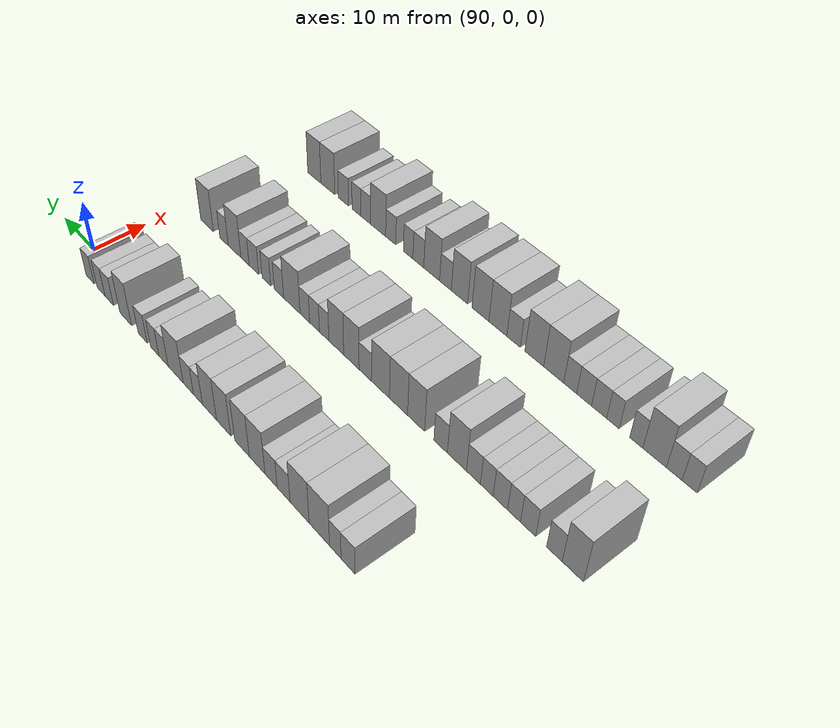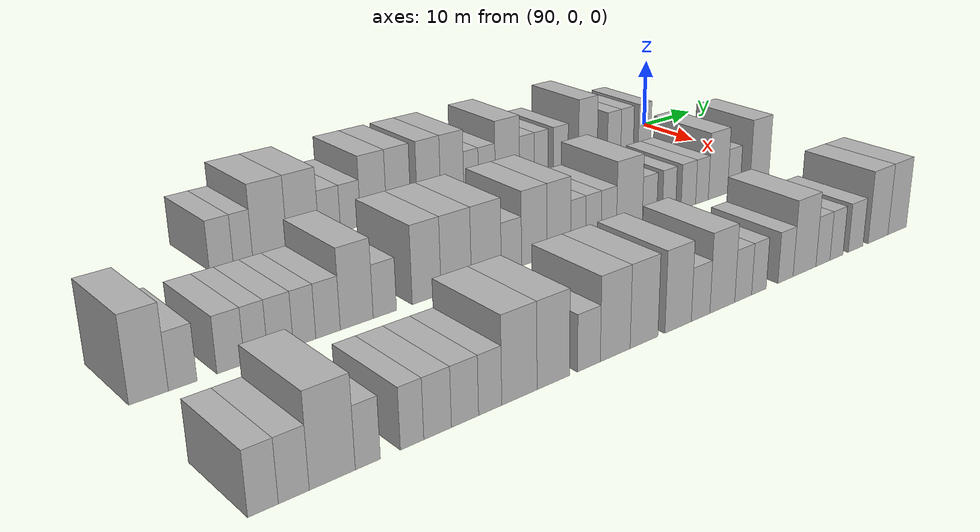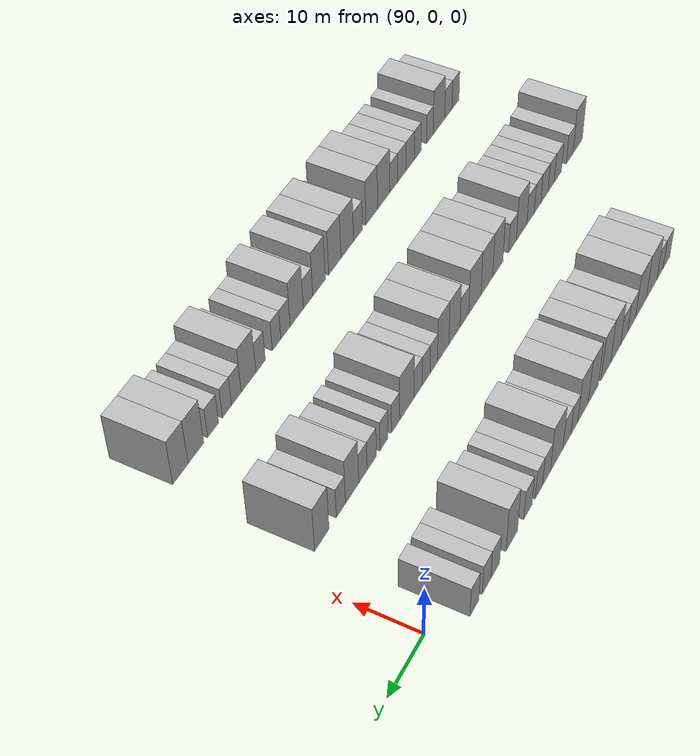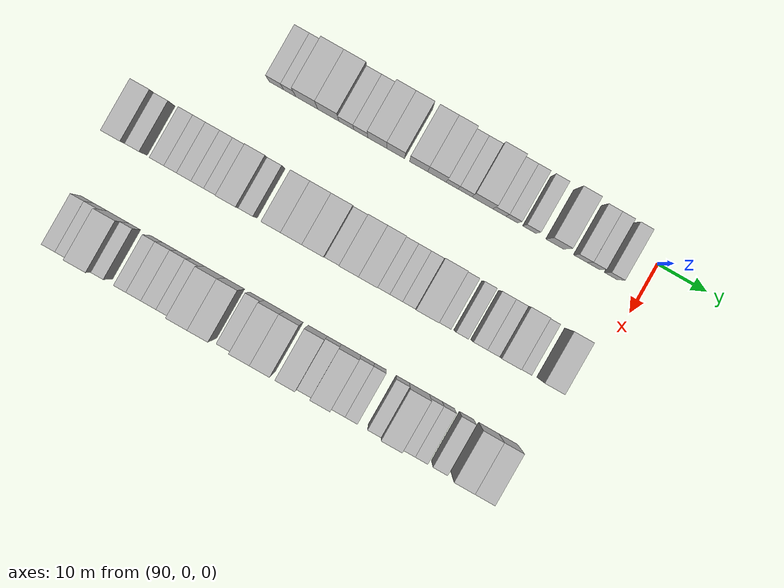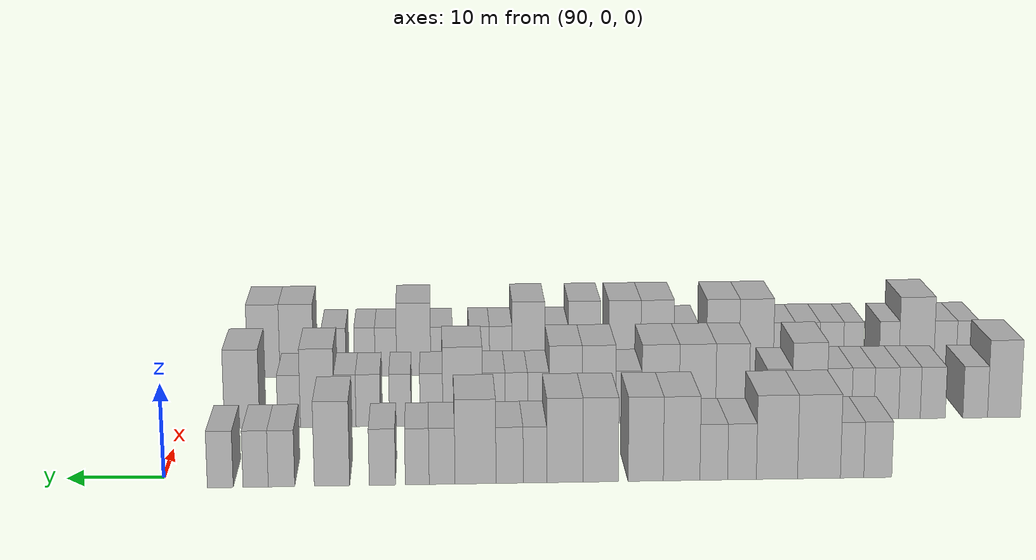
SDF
<sdf version="1.6">
 <world name="default">
  <model name="building_635">
   <static>1</static>
   <pose>91.0000 -74.0709 0 0.000000 0.000000 0.000000</pose>
   <link name="link">
    <pose>0 0 3.00 0 0 0</pose>
    <collision name="collision"><geometry><box><size>10.0000 2.9344 6.0000</size></box></geometry></collision>
    <visual name="visual">
     <cast_shadows>0</cast_shadows>
     <geometry><box><size>10.0000 2.9344 6.0000</size></box></geometry>
     <material>
      <script>
       <uri>model://HANNAS_wall/materials/scripts</uri>
       <uri>model://HANNAS_wall/materials/textures</uri>
       <name>vrc/HANNAS_wall</name>
      </script>
     </material>
    </visual>
   </link>
  </model>
  <model name="building_636">
   <static>1</static>
   <pose>91.0000 -71.3805 0 0.000000 0.000000 0.000000</pose>
   <link name="link">
    <pose>0 0 3.00 0 0 0</pose>
    <collision name="collision"><geometry><box><size>10.0000 2.4462 6.0000</size></box></geometry></collision>
    <visual name="visual">
     <cast_shadows>0</cast_shadows>
     <geometry><box><size>10.0000 2.4462 6.0000</size></box></geometry>
     <material>
      <script>
       <uri>model://HANNAS_wall/materials/scripts</uri>
       <uri>model://HANNAS_wall/materials/textures</uri>
       <name>vrc/HANNAS_wall</name>
      </script>
     </material>
    </visual>
   </link>
  </model>
  <model name="building_637">
   <static>1</static>
   <pose>91.0000 -67.9152 0 0.000000 0.000000 0.000000</pose>
   <link name="link">
    <pose>0 0 4.50 0 0 0</pose>
    <collision name="collision"><geometry><box><size>10.0000 4.4844 9.0000</size></box></geometry></collision>
    <visual name="visual">
     <cast_shadows>0</cast_shadows>
     <geometry><box><size>10.0000 4.4844 9.0000</size></box></geometry>
     <material>
      <script>
       <uri>model://HANNAS_wall/materials/scripts</uri>
       <uri>model://HANNAS_wall/materials/textures</uri>
       <name>vrc/HANNAS_wall</name>
      </script>
     </material>
    </visual>
   </link>
  </model>
  <model name="building_638">
   <static>1</static>
   <pose>91.0000 -63.5271 0 0.000000 0.000000 0.000000</pose>
   <link name="link">
    <pose>0 0 4.50 0 0 0</pose>
    <collision name="collision"><geometry><box><size>10.0000 4.2916 9.0000</size></box></geometry></collision>
    <visual name="visual">
     <cast_shadows>0</cast_shadows>
     <geometry><box><size>10.0000 4.2916 9.0000</size></box></geometry>
     <material>
      <script>
       <uri>model://HANNAS_wall/materials/scripts</uri>
       <uri>model://HANNAS_wall/materials/textures</uri>
       <name>vrc/HANNAS_wall</name>
      </script>
     </material>
    </visual>
   </link>
  </model>
  <model name="building_639">
   <static>1</static>
   <pose>91.0000 -59.8822 0 0.000000 0.000000 0.000000</pose>
   <link name="link">
    <pose>0 0 3.00 0 0 0</pose>
    <collision name="collision"><geometry><box><size>10.0000 2.9983 6.0000</size></box></geometry></collision>
    <visual name="visual">
     <cast_shadows>0</cast_shadows>
     <geometry><box><size>10.0000 2.9983 6.0000</size></box></geometry>
     <material>
      <script>
       <uri>model://HANNAS_wall/materials/scripts</uri>
       <uri>model://HANNAS_wall/materials/textures</uri>
       <name>vrc/HANNAS_wall</name>
      </script>
     </material>
    </visual>
   </link>
  </model>
  <model name="building_640">
   <static>1</static>
   <pose>91.0000 -56.9456 0 0.000000 0.000000 0.000000</pose>
   <link name="link">
    <pose>0 0 3.00 0 0 0</pose>
    <collision name="collision"><geometry><box><size>10.0000 2.8748 6.0000</size></box></geometry></collision>
    <visual name="visual">
     <cast_shadows>0</cast_shadows>
     <geometry><box><size>10.0000 2.8748 6.0000</size></box></geometry>
     <material>
      <script>
       <uri>model://HANNAS_wall/materials/scripts</uri>
       <uri>model://HANNAS_wall/materials/textures</uri>
       <name>vrc/HANNAS_wall</name>
      </script>
     </material>
    </visual>
   </link>
  </model>
  <model name="building_641">
   <static>1</static>
   <pose>91.0000 -53.6068 0 0.000000 0.000000 0.000000</pose>
   <link name="link">
    <pose>0 0 4.50 0 0 0</pose>
    <collision name="collision"><geometry><box><size>10.0000 3.8029 9.0000</size></box></geometry></collision>
    <visual name="visual">
     <cast_shadows>0</cast_shadows>
     <geometry><box><size>10.0000 3.8029 9.0000</size></box></geometry>
     <material>
      <script>
       <uri>model://HANNAS_wall/materials/scripts</uri>
       <uri>model://HANNAS_wall/materials/textures</uri>
       <name>vrc/HANNAS_wall</name>
      </script>
     </material>
    </visual>
   </link>
  </model>
  <model name="building_642">
   <static>1</static>
   <pose>91.0000 -49.8821 0 0.000000 0.000000 0.000000</pose>
   <link name="link">
    <pose>0 0 4.50 0 0 0</pose>
    <collision name="collision"><geometry><box><size>10.0000 3.6464 9.0000</size></box></geometry></collision>
    <visual name="visual">
     <cast_shadows>0</cast_shadows>
     <geometry><box><size>10.0000 3.6464 9.0000</size></box></geometry>
     <material>
      <script>
       <uri>model://HANNAS_wall/materials/scripts</uri>
       <uri>model://HANNAS_wall/materials/textures</uri>
       <name>vrc/HANNAS_wall</name>
      </script>
     </material>
    </visual>
   </link>
  </model>
  <model name="building_643">
   <static>1</static>
   <pose>91.0000 -45.2205 0 0.000000 0.000000 0.000000</pose>
   <link name="link">
    <pose>0 0 4.50 0 0 0</pose>
    <collision name="collision"><geometry><box><size>10.0000 3.6768 9.0000</size></box></geometry></collision>
    <visual name="visual">
     <cast_shadows>0</cast_shadows>
     <geometry><box><size>10.0000 3.6768 9.0000</size></box></geometry>
     <material>
      <script>
       <uri>model://HANNAS_wall/materials/scripts</uri>
       <uri>model://HANNAS_wall/materials/textures</uri>
       <name>vrc/HANNAS_wall</name>
      </script>
     </material>
    </visual>
   </link>
  </model>
  <model name="building_644">
   <static>1</static>
   <pose>91.0000 -41.5145 0 0.000000 0.000000 0.000000</pose>
   <link name="link">
    <pose>0 0 4.50 0 0 0</pose>
    <collision name="collision"><geometry><box><size>10.0000 3.7351 9.0000</size></box></geometry></collision>
    <visual name="visual">
     <cast_shadows>0</cast_shadows>
     <geometry><box><size>10.0000 3.7351 9.0000</size></box></geometry>
     <material>
      <script>
       <uri>model://HANNAS_wall/materials/scripts</uri>
       <uri>model://HANNAS_wall/materials/textures</uri>
       <name>vrc/HANNAS_wall</name>
      </script>
     </material>
    </visual>
   </link>
  </model>
  <model name="building_645">
   <static>1</static>
   <pose>91.0000 -38.4272 0 0.000000 0.000000 0.000000</pose>
   <link name="link">
    <pose>0 0 3.00 0 0 0</pose>
    <collision name="collision"><geometry><box><size>10.0000 2.4395 6.0000</size></box></geometry></collision>
    <visual name="visual">
     <cast_shadows>0</cast_shadows>
     <geometry><box><size>10.0000 2.4395 6.0000</size></box></geometry>
     <material>
      <script>
       <uri>model://HANNAS_wall/materials/scripts</uri>
       <uri>model://HANNAS_wall/materials/textures</uri>
       <name>vrc/HANNAS_wall</name>
      </script>
     </material>
    </visual>
   </link>
  </model>
  <model name="building_646">
   <static>1</static>
   <pose>91.0000 -35.8054 0 0.000000 0.000000 0.000000</pose>
   <link name="link">
    <pose>0 0 3.00 0 0 0</pose>
    <collision name="collision"><geometry><box><size>10.0000 2.8041 6.0000</size></box></geometry></collision>
    <visual name="visual">
     <cast_shadows>0</cast_shadows>
     <geometry><box><size>10.0000 2.8041 6.0000</size></box></geometry>
     <material>
      <script>
       <uri>model://HANNAS_wall/materials/scripts</uri>
       <uri>model://HANNAS_wall/materials/textures</uri>
       <name>vrc/HANNAS_wall</name>
      </script>
     </material>
    </visual>
   </link>
  </model>
  <model name="building_647">
   <static>1</static>
   <pose>91.0000 -32.2927 0 0.000000 0.000000 0.000000</pose>
   <link name="link">
    <pose>0 0 4.50 0 0 0</pose>
    <collision name="collision"><geometry><box><size>10.0000 4.2214 9.0000</size></box></geometry></collision>
    <visual name="visual">
     <cast_shadows>0</cast_shadows>
     <geometry><box><size>10.0000 4.2214 9.0000</size></box></geometry>
     <material>
      <script>
       <uri>model://HANNAS_wall/materials/scripts</uri>
       <uri>model://HANNAS_wall/materials/textures</uri>
       <name>vrc/HANNAS_wall</name>
      </script>
     </material>
    </visual>
   </link>
  </model>
  <model name="building_648">
   <static>1</static>
   <pose>91.0000 -28.8555 0 0.000000 0.000000 0.000000</pose>
   <link name="link">
    <pose>0 0 3.00 0 0 0</pose>
    <collision name="collision"><geometry><box><size>10.0000 2.6531 6.0000</size></box></geometry></collision>
    <visual name="visual">
     <cast_shadows>0</cast_shadows>
     <geometry><box><size>10.0000 2.6531 6.0000</size></box></geometry>
     <material>
      <script>
       <uri>model://HANNAS_wall/materials/scripts</uri>
       <uri>model://HANNAS_wall/materials/textures</uri>
       <name>vrc/HANNAS_wall</name>
      </script>
     </material>
    </visual>
   </link>
  </model>
  <model name="building_649">
   <static>1</static>
   <pose>91.0000 -26.3002 0 0.000000 0.000000 0.000000</pose>
   <link name="link">
    <pose>0 0 3.00 0 0 0</pose>
    <collision name="collision"><geometry><box><size>10.0000 2.4575 6.0000</size></box></geometry></collision>
    <visual name="visual">
     <cast_shadows>0</cast_shadows>
     <geometry><box><size>10.0000 2.4575 6.0000</size></box></geometry>
     <material>
      <script>
       <uri>model://HANNAS_wall/materials/scripts</uri>
       <uri>model://HANNAS_wall/materials/textures</uri>
       <name>vrc/HANNAS_wall</name>
      </script>
     </material>
    </visual>
   </link>
  </model>
  <model name="building_650">
   <static>1</static>
   <pose>91.0000 -22.7211 0 0.000000 0.000000 0.000000</pose>
   <link name="link">
    <pose>0 0 3.00 0 0 0</pose>
    <collision name="collision"><geometry><box><size>10.0000 2.7008 6.0000</size></box></geometry></collision>
    <visual name="visual">
     <cast_shadows>0</cast_shadows>
     <geometry><box><size>10.0000 2.7008 6.0000</size></box></geometry>
     <material>
      <script>
       <uri>model://HANNAS_wall/materials/scripts</uri>
       <uri>model://HANNAS_wall/materials/textures</uri>
       <name>vrc/HANNAS_wall</name>
      </script>
     </material>
    </visual>
   </link>
  </model>
  <model name="building_651">
   <static>1</static>
   <pose>91.0000 -17.5588 0 0.000000 0.000000 0.000000</pose>
   <link name="link">
    <pose>0 0 4.50 0 0 0</pose>
    <collision name="collision"><geometry><box><size>10.0000 3.6238 9.0000</size></box></geometry></collision>
    <visual name="visual">
     <cast_shadows>0</cast_shadows>
     <geometry><box><size>10.0000 3.6238 9.0000</size></box></geometry>
     <material>
      <script>
       <uri>model://HANNAS_wall/materials/scripts</uri>
       <uri>model://HANNAS_wall/materials/textures</uri>
       <name>vrc/HANNAS_wall</name>
      </script>
     </material>
    </visual>
   </link>
  </model>
  <model name="building_652">
   <static>1</static>
   <pose>91.0000 -12.3961 0 0.000000 0.000000 0.000000</pose>
   <link name="link">
    <pose>0 0 3.00 0 0 0</pose>
    <collision name="collision"><geometry><box><size>10.0000 2.7015 6.0000</size></box></geometry></collision>
    <visual name="visual">
     <cast_shadows>0</cast_shadows>
     <geometry><box><size>10.0000 2.7015 6.0000</size></box></geometry>
     <material>
      <script>
       <uri>model://HANNAS_wall/materials/scripts</uri>
       <uri>model://HANNAS_wall/materials/textures</uri>
       <name>vrc/HANNAS_wall</name>
      </script>
     </material>
    </visual>
   </link>
  </model>
  <model name="building_653">
   <static>1</static>
   <pose>91.0000 -9.7582 0 0.000000 0.000000 0.000000</pose>
   <link name="link">
    <pose>0 0 3.00 0 0 0</pose>
    <collision name="collision"><geometry><box><size>10.0000 2.5742 6.0000</size></box></geometry></collision>
    <visual name="visual">
     <cast_shadows>0</cast_shadows>
     <geometry><box><size>10.0000 2.5742 6.0000</size></box></geometry>
     <material>
      <script>
       <uri>model://HANNAS_wall/materials/scripts</uri>
       <uri>model://HANNAS_wall/materials/textures</uri>
       <name>vrc/HANNAS_wall</name>
      </script>
     </material>
    </visual>
   </link>
  </model>
  <model name="building_654">
   <static>1</static>
   <pose>91.0000 -6.1520 0 0.000000 0.000000 0.000000</pose>
   <link name="link">
    <pose>0 0 3.00 0 0 0</pose>
    <collision name="collision"><geometry><box><size>10.0000 2.6381 6.0000</size></box></geometry></collision>
    <visual name="visual">
     <cast_shadows>0</cast_shadows>
     <geometry><box><size>10.0000 2.6381 6.0000</size></box></geometry>
     <material>
      <script>
       <uri>model://HANNAS_wall/materials/scripts</uri>
       <uri>model://HANNAS_wall/materials/textures</uri>
       <name>vrc/HANNAS_wall</name>
      </script>
     </material>
    </visual>
   </link>
  </model>
  <model name="building_829">
   <static>1</static>
   <pose>113.0000 -92.5444 0 0.000000 0.000000 0.000000</pose>
   <link name="link">
    <pose>0 0 4.50 0 0 0</pose>
    <collision name="collision"><geometry><box><size>10.0000 3.7717 9.0000</size></box></geometry></collision>
    <visual name="visual">
     <cast_shadows>0</cast_shadows>
     <geometry><box><size>10.0000 3.7717 9.0000</size></box></geometry>
     <material>
      <script>
       <uri>model://HANNAS_wall/materials/scripts</uri>
       <uri>model://HANNAS_wall/materials/textures</uri>
       <name>vrc/HANNAS_wall</name>
      </script>
     </material>
    </visual>
   </link>
  </model>
  <model name="building_830">
   <static>1</static>
   <pose>113.0000 -89.2477 0 0.000000 0.000000 0.000000</pose>
   <link name="link">
    <pose>0 0 3.00 0 0 0</pose>
    <collision name="collision"><geometry><box><size>10.0000 2.8218 6.0000</size></box></geometry></collision>
    <visual name="visual">
     <cast_shadows>0</cast_shadows>
     <geometry><box><size>10.0000 2.8218 6.0000</size></box></geometry>
     <material>
      <script>
       <uri>model://HANNAS_wall/materials/scripts</uri>
       <uri>model://HANNAS_wall/materials/textures</uri>
       <name>vrc/HANNAS_wall</name>
      </script>
     </material>
    </visual>
   </link>
  </model>
  <model name="building_831">
   <static>1</static>
   <pose>113.0000 -84.4050 0 0.000000 0.000000 0.000000</pose>
   <link name="link">
    <pose>0 0 3.00 0 0 0</pose>
    <collision name="collision"><geometry><box><size>10.0000 2.8636 6.0000</size></box></geometry></collision>
    <visual name="visual">
     <cast_shadows>0</cast_shadows>
     <geometry><box><size>10.0000 2.8636 6.0000</size></box></geometry>
     <material>
      <script>
       <uri>model://HANNAS_wall/materials/scripts</uri>
       <uri>model://HANNAS_wall/materials/textures</uri>
       <name>vrc/HANNAS_wall</name>
      </script>
     </material>
    </visual>
   </link>
  </model>
  <model name="building_832">
   <static>1</static>
   <pose>113.0000 -81.7369 0 0.000000 0.000000 0.000000</pose>
   <link name="link">
    <pose>0 0 3.00 0 0 0</pose>
    <collision name="collision"><geometry><box><size>10.0000 2.4724 6.0000</size></box></geometry></collision>
    <visual name="visual">
     <cast_shadows>0</cast_shadows>
     <geometry><box><size>10.0000 2.4724 6.0000</size></box></geometry>
     <material>
      <script>
       <uri>model://HANNAS_wall/materials/scripts</uri>
       <uri>model://HANNAS_wall/materials/textures</uri>
       <name>vrc/HANNAS_wall</name>
      </script>
     </material>
    </visual>
   </link>
  </model>
  <model name="building_833">
   <static>1</static>
   <pose>113.0000 -79.0940 0 0.000000 0.000000 0.000000</pose>
   <link name="link">
    <pose>0 0 3.00 0 0 0</pose>
    <collision name="collision"><geometry><box><size>10.0000 2.8135 6.0000</size></box></geometry></collision>
    <visual name="visual">
     <cast_shadows>0</cast_shadows>
     <geometry><box><size>10.0000 2.8135 6.0000</size></box></geometry>
     <material>
      <script>
       <uri>model://HANNAS_wall/materials/scripts</uri>
       <uri>model://HANNAS_wall/materials/textures</uri>
       <name>vrc/HANNAS_wall</name>
      </script>
     </material>
    </visual>
   </link>
  </model>
  <model name="building_834">
   <static>1</static>
   <pose>113.0000 -76.4211 0 0.000000 0.000000 0.000000</pose>
   <link name="link">
    <pose>0 0 3.00 0 0 0</pose>
    <collision name="collision"><geometry><box><size>10.0000 2.5323 6.0000</size></box></geometry></collision>
    <visual name="visual">
     <cast_shadows>0</cast_shadows>
     <geometry><box><size>10.0000 2.5323 6.0000</size></box></geometry>
     <material>
      <script>
       <uri>model://HANNAS_wall/materials/scripts</uri>
       <uri>model://HANNAS_wall/materials/textures</uri>
       <name>vrc/HANNAS_wall</name>
      </script>
     </material>
    </visual>
   </link>
  </model>
  <model name="building_835">
   <static>1</static>
   <pose>113.0000 -73.7367 0 0.000000 0.000000 0.000000</pose>
   <link name="link">
    <pose>0 0 3.00 0 0 0</pose>
    <collision name="collision"><geometry><box><size>10.0000 2.8365 6.0000</size></box></geometry></collision>
    <visual name="visual">
     <cast_shadows>0</cast_shadows>
     <geometry><box><size>10.0000 2.8365 6.0000</size></box></geometry>
     <material>
      <script>
       <uri>model://HANNAS_wall/materials/scripts</uri>
       <uri>model://HANNAS_wall/materials/textures</uri>
       <name>vrc/HANNAS_wall</name>
      </script>
     </material>
    </visual>
   </link>
  </model>
  <model name="building_836">
   <static>1</static>
   <pose>113.0000 -70.3441 0 0.000000 0.000000 0.000000</pose>
   <link name="link">
    <pose>0 0 4.50 0 0 0</pose>
    <collision name="collision"><geometry><box><size>10.0000 3.9487 9.0000</size></box></geometry></collision>
    <visual name="visual">
     <cast_shadows>0</cast_shadows>
     <geometry><box><size>10.0000 3.9487 9.0000</size></box></geometry>
     <material>
      <script>
       <uri>model://HANNAS_wall/materials/scripts</uri>
       <uri>model://HANNAS_wall/materials/textures</uri>
       <name>vrc/HANNAS_wall</name>
      </script>
     </material>
    </visual>
   </link>
  </model>
  <model name="building_837">
   <static>1</static>
   <pose>113.0000 -66.9266 0 0.000000 0.000000 0.000000</pose>
   <link name="link">
    <pose>0 0 3.00 0 0 0</pose>
    <collision name="collision"><geometry><box><size>10.0000 2.8862 6.0000</size></box></geometry></collision>
    <visual name="visual">
     <cast_shadows>0</cast_shadows>
     <geometry><box><size>10.0000 2.8862 6.0000</size></box></geometry>
     <material>
      <script>
       <uri>model://HANNAS_wall/materials/scripts</uri>
       <uri>model://HANNAS_wall/materials/textures</uri>
       <name>vrc/HANNAS_wall</name>
      </script>
     </material>
    </visual>
   </link>
  </model>
  <model name="building_838">
   <static>1</static>
   <pose>113.0000 -61.5988 0 0.000000 0.000000 0.000000</pose>
   <link name="link">
    <pose>0 0 4.50 0 0 0</pose>
    <collision name="collision"><geometry><box><size>10.0000 3.7695 9.0000</size></box></geometry></collision>
    <visual name="visual">
     <cast_shadows>0</cast_shadows>
     <geometry><box><size>10.0000 3.7695 9.0000</size></box></geometry>
     <material>
      <script>
       <uri>model://HANNAS_wall/materials/scripts</uri>
       <uri>model://HANNAS_wall/materials/textures</uri>
       <name>vrc/HANNAS_wall</name>
      </script>
     </material>
    </visual>
   </link>
  </model>
  <model name="building_839">
   <static>1</static>
   <pose>113.0000 -57.6592 0 0.000000 0.000000 0.000000</pose>
   <link name="link">
    <pose>0 0 4.50 0 0 0</pose>
    <collision name="collision"><geometry><box><size>10.0000 4.1097 9.0000</size></box></geometry></collision>
    <visual name="visual">
     <cast_shadows>0</cast_shadows>
     <geometry><box><size>10.0000 4.1097 9.0000</size></box></geometry>
     <material>
      <script>
       <uri>model://HANNAS_wall/materials/scripts</uri>
       <uri>model://HANNAS_wall/materials/textures</uri>
       <name>vrc/HANNAS_wall</name>
      </script>
     </material>
    </visual>
   </link>
  </model>
  <model name="building_840">
   <static>1</static>
   <pose>113.0000 -53.4996 0 0.000000 0.000000 0.000000</pose>
   <link name="link">
    <pose>0 0 4.50 0 0 0</pose>
    <collision name="collision"><geometry><box><size>10.0000 4.2095 9.0000</size></box></geometry></collision>
    <visual name="visual">
     <cast_shadows>0</cast_shadows>
     <geometry><box><size>10.0000 4.2095 9.0000</size></box></geometry>
     <material>
      <script>
       <uri>model://HANNAS_wall/materials/scripts</uri>
       <uri>model://HANNAS_wall/materials/textures</uri>
       <name>vrc/HANNAS_wall</name>
      </script>
     </material>
    </visual>
   </link>
  </model>
  <model name="building_841">
   <static>1</static>
   <pose>113.0000 -49.9200 0 0.000000 0.000000 0.000000</pose>
   <link name="link">
    <pose>0 0 3.00 0 0 0</pose>
    <collision name="collision"><geometry><box><size>10.0000 2.9497 6.0000</size></box></geometry></collision>
    <visual name="visual">
     <cast_shadows>0</cast_shadows>
     <geometry><box><size>10.0000 2.9497 6.0000</size></box></geometry>
     <material>
      <script>
       <uri>model://HANNAS_wall/materials/scripts</uri>
       <uri>model://HANNAS_wall/materials/textures</uri>
       <name>vrc/HANNAS_wall</name>
      </script>
     </material>
    </visual>
   </link>
  </model>
  <model name="building_842">
   <static>1</static>
   <pose>113.0000 -46.5557 0 0.000000 0.000000 0.000000</pose>
   <link name="link">
    <pose>0 0 4.50 0 0 0</pose>
    <collision name="collision"><geometry><box><size>10.0000 3.7789 9.0000</size></box></geometry></collision>
    <visual name="visual">
     <cast_shadows>0</cast_shadows>
     <geometry><box><size>10.0000 3.7789 9.0000</size></box></geometry>
     <material>
      <script>
       <uri>model://HANNAS_wall/materials/scripts</uri>
       <uri>model://HANNAS_wall/materials/textures</uri>
       <name>vrc/HANNAS_wall</name>
      </script>
     </material>
    </visual>
   </link>
  </model>
  <model name="building_843">
   <static>1</static>
   <pose>113.0000 -42.8219 0 0.000000 0.000000 0.000000</pose>
   <link name="link">
    <pose>0 0 4.50 0 0 0</pose>
    <collision name="collision"><geometry><box><size>10.0000 3.6886 9.0000</size></box></geometry></collision>
    <visual name="visual">
     <cast_shadows>0</cast_shadows>
     <geometry><box><size>10.0000 3.6886 9.0000</size></box></geometry>
     <material>
      <script>
       <uri>model://HANNAS_wall/materials/scripts</uri>
       <uri>model://HANNAS_wall/materials/textures</uri>
       <name>vrc/HANNAS_wall</name>
      </script>
     </material>
    </visual>
   </link>
  </model>
  <model name="building_844">
   <static>1</static>
   <pose>113.0000 -39.7680 0 0.000000 0.000000 0.000000</pose>
   <link name="link">
    <pose>0 0 3.00 0 0 0</pose>
    <collision name="collision"><geometry><box><size>10.0000 2.4192 6.0000</size></box></geometry></collision>
    <visual name="visual">
     <cast_shadows>0</cast_shadows>
     <geometry><box><size>10.0000 2.4192 6.0000</size></box></geometry>
     <material>
      <script>
       <uri>model://HANNAS_wall/materials/scripts</uri>
       <uri>model://HANNAS_wall/materials/textures</uri>
       <name>vrc/HANNAS_wall</name>
      </script>
     </material>
    </visual>
   </link>
  </model>
  <model name="building_845">
   <static>1</static>
   <pose>113.0000 -37.3028 0 0.000000 0.000000 0.000000</pose>
   <link name="link">
    <pose>0 0 3.00 0 0 0</pose>
    <collision name="collision"><geometry><box><size>10.0000 2.5112 6.0000</size></box></geometry></collision>
    <visual name="visual">
     <cast_shadows>0</cast_shadows>
     <geometry><box><size>10.0000 2.5112 6.0000</size></box></geometry>
     <material>
      <script>
       <uri>model://HANNAS_wall/materials/scripts</uri>
       <uri>model://HANNAS_wall/materials/textures</uri>
       <name>vrc/HANNAS_wall</name>
      </script>
     </material>
    </visual>
   </link>
  </model>
  <model name="building_846">
   <static>1</static>
   <pose>113.0000 -34.7753 0 0.000000 0.000000 0.000000</pose>
   <link name="link">
    <pose>0 0 3.00 0 0 0</pose>
    <collision name="collision"><geometry><box><size>10.0000 2.5440 6.0000</size></box></geometry></collision>
    <visual name="visual">
     <cast_shadows>0</cast_shadows>
     <geometry><box><size>10.0000 2.5440 6.0000</size></box></geometry>
     <material>
      <script>
       <uri>model://HANNAS_wall/materials/scripts</uri>
       <uri>model://HANNAS_wall/materials/textures</uri>
       <name>vrc/HANNAS_wall</name>
      </script>
     </material>
    </visual>
   </link>
  </model>
  <model name="building_847">
   <static>1</static>
   <pose>113.0000 -31.2869 0 0.000000 0.000000 0.000000</pose>
   <link name="link">
    <pose>0 0 4.50 0 0 0</pose>
    <collision name="collision"><geometry><box><size>10.0000 4.4327 9.0000</size></box></geometry></collision>
    <visual name="visual">
     <cast_shadows>0</cast_shadows>
     <geometry><box><size>10.0000 4.4327 9.0000</size></box></geometry>
     <material>
      <script>
       <uri>model://HANNAS_wall/materials/scripts</uri>
       <uri>model://HANNAS_wall/materials/textures</uri>
       <name>vrc/HANNAS_wall</name>
      </script>
     </material>
    </visual>
   </link>
  </model>
  <model name="building_848">
   <static>1</static>
   <pose>113.0000 -27.7995 0 0.000000 0.000000 0.000000</pose>
   <link name="link">
    <pose>0 0 3.00 0 0 0</pose>
    <collision name="collision"><geometry><box><size>10.0000 2.5421 6.0000</size></box></geometry></collision>
    <visual name="visual">
     <cast_shadows>0</cast_shadows>
     <geometry><box><size>10.0000 2.5421 6.0000</size></box></geometry>
     <material>
      <script>
       <uri>model://HANNAS_wall/materials/scripts</uri>
       <uri>model://HANNAS_wall/materials/textures</uri>
       <name>vrc/HANNAS_wall</name>
      </script>
     </material>
    </visual>
   </link>
  </model>
  <model name="building_849">
   <static>1</static>
   <pose>113.0000 -24.3184 0 0.000000 0.000000 0.000000</pose>
   <link name="link">
    <pose>0 0 3.00 0 0 0</pose>
    <collision name="collision"><geometry><box><size>10.0000 2.4200 6.0000</size></box></geometry></collision>
    <visual name="visual">
     <cast_shadows>0</cast_shadows>
     <geometry><box><size>10.0000 2.4200 6.0000</size></box></geometry>
     <material>
      <script>
       <uri>model://HANNAS_wall/materials/scripts</uri>
       <uri>model://HANNAS_wall/materials/textures</uri>
       <name>vrc/HANNAS_wall</name>
      </script>
     </material>
    </visual>
   </link>
  </model>
  <model name="building_850">
   <static>1</static>
   <pose>113.0000 -20.7438 0 0.000000 0.000000 0.000000</pose>
   <link name="link">
    <pose>0 0 3.00 0 0 0</pose>
    <collision name="collision"><geometry><box><size>10.0000 2.7293 6.0000</size></box></geometry></collision>
    <visual name="visual">
     <cast_shadows>0</cast_shadows>
     <geometry><box><size>10.0000 2.7293 6.0000</size></box></geometry>
     <material>
      <script>
       <uri>model://HANNAS_wall/materials/scripts</uri>
       <uri>model://HANNAS_wall/materials/textures</uri>
       <name>vrc/HANNAS_wall</name>
      </script>
     </material>
    </visual>
   </link>
  </model>
  <model name="building_851">
   <static>1</static>
   <pose>113.0000 -18.1729 0 0.000000 0.000000 0.000000</pose>
   <link name="link">
    <pose>0 0 3.00 0 0 0</pose>
    <collision name="collision"><geometry><box><size>10.0000 2.4125 6.0000</size></box></geometry></collision>
    <visual name="visual">
     <cast_shadows>0</cast_shadows>
     <geometry><box><size>10.0000 2.4125 6.0000</size></box></geometry>
     <material>
      <script>
       <uri>model://HANNAS_wall/materials/scripts</uri>
       <uri>model://HANNAS_wall/materials/textures</uri>
       <name>vrc/HANNAS_wall</name>
      </script>
     </material>
    </visual>
   </link>
  </model>
  <model name="building_852">
   <static>1</static>
   <pose>113.0000 -15.0788 0 0.000000 0.000000 0.000000</pose>
   <link name="link">
    <pose>0 0 4.50 0 0 0</pose>
    <collision name="collision"><geometry><box><size>10.0000 3.7758 9.0000</size></box></geometry></collision>
    <visual name="visual">
     <cast_shadows>0</cast_shadows>
     <geometry><box><size>10.0000 3.7758 9.0000</size></box></geometry>
     <material>
      <script>
       <uri>model://HANNAS_wall/materials/scripts</uri>
       <uri>model://HANNAS_wall/materials/textures</uri>
       <name>vrc/HANNAS_wall</name>
      </script>
     </material>
    </visual>
   </link>
  </model>
  <model name="building_853">
   <static>1</static>
   <pose>113.0000 -11.9320 0 0.000000 0.000000 0.000000</pose>
   <link name="link">
    <pose>0 0 3.00 0 0 0</pose>
    <collision name="collision"><geometry><box><size>10.0000 2.5176 6.0000</size></box></geometry></collision>
    <visual name="visual">
     <cast_shadows>0</cast_shadows>
     <geometry><box><size>10.0000 2.5176 6.0000</size></box></geometry>
     <material>
      <script>
       <uri>model://HANNAS_wall/materials/scripts</uri>
       <uri>model://HANNAS_wall/materials/textures</uri>
       <name>vrc/HANNAS_wall</name>
      </script>
     </material>
    </visual>
   </link>
  </model>
  <model name="building_854">
   <static>1</static>
   <pose>113.0000 -6.7148 0 0.000000 0.000000 0.000000</pose>
   <link name="link">
    <pose>0 0 4.50 0 0 0</pose>
    <collision name="collision"><geometry><box><size>10.0000 3.9169 9.0000</size></box></geometry></collision>
    <visual name="visual">
     <cast_shadows>0</cast_shadows>
     <geometry><box><size>10.0000 3.9169 9.0000</size></box></geometry>
     <material>
      <script>
       <uri>model://HANNAS_wall/materials/scripts</uri>
       <uri>model://HANNAS_wall/materials/textures</uri>
       <name>vrc/HANNAS_wall</name>
      </script>
     </material>
    </visual>
   </link>
  </model>
  <model name="building_1014">
   <static>1</static>
   <pose>135.0000 -93.1760 0 0.000000 0.000000 0.000000</pose>
   <link name="link">
    <pose>0 0 3.00 0 0 0</pose>
    <collision name="collision"><geometry><box><size>10.0000 2.6599 6.0000</size></box></geometry></collision>
    <visual name="visual">
     <cast_shadows>0</cast_shadows>
     <geometry><box><size>10.0000 2.6599 6.0000</size></box></geometry>
     <material>
      <script>
       <uri>model://HANNAS_wall/materials/scripts</uri>
       <uri>model://HANNAS_wall/materials/textures</uri>
       <name>vrc/HANNAS_wall</name>
      </script>
     </material>
    </visual>
   </link>
  </model>
  <model name="building_1015">
   <static>1</static>
   <pose>135.0000 -90.4638 0 0.000000 0.000000 0.000000</pose>
   <link name="link">
    <pose>0 0 3.00 0 0 0</pose>
    <collision name="collision"><geometry><box><size>10.0000 2.7644 6.0000</size></box></geometry></collision>
    <visual name="visual">
     <cast_shadows>0</cast_shadows>
     <geometry><box><size>10.0000 2.7644 6.0000</size></box></geometry>
     <material>
      <script>
       <uri>model://HANNAS_wall/materials/scripts</uri>
       <uri>model://HANNAS_wall/materials/textures</uri>
       <name>vrc/HANNAS_wall</name>
      </script>
     </material>
    </visual>
   </link>
  </model>
  <model name="building_1016">
   <static>1</static>
   <pose>135.0000 -86.9282 0 0.000000 0.000000 0.000000</pose>
   <link name="link">
    <pose>0 0 4.50 0 0 0</pose>
    <collision name="collision"><geometry><box><size>10.0000 4.3067 9.0000</size></box></geometry></collision>
    <visual name="visual">
     <cast_shadows>0</cast_shadows>
     <geometry><box><size>10.0000 4.3067 9.0000</size></box></geometry>
     <material>
      <script>
       <uri>model://HANNAS_wall/materials/scripts</uri>
       <uri>model://HANNAS_wall/materials/textures</uri>
       <name>vrc/HANNAS_wall</name>
      </script>
     </material>
    </visual>
   </link>
  </model>
  <model name="building_1017">
   <static>1</static>
   <pose>135.0000 -83.5547 0 0.000000 0.000000 0.000000</pose>
   <link name="link">
    <pose>0 0 3.00 0 0 0</pose>
    <collision name="collision"><geometry><box><size>10.0000 2.4402 6.0000</size></box></geometry></collision>
    <visual name="visual">
     <cast_shadows>0</cast_shadows>
     <geometry><box><size>10.0000 2.4402 6.0000</size></box></geometry>
     <material>
      <script>
       <uri>model://HANNAS_wall/materials/scripts</uri>
       <uri>model://HANNAS_wall/materials/textures</uri>
       <name>vrc/HANNAS_wall</name>
      </script>
     </material>
    </visual>
   </link>
  </model>
  <model name="building_1018">
   <static>1</static>
   <pose>135.0000 -79.1269 0 0.000000 0.000000 0.000000</pose>
   <link name="link">
    <pose>0 0 3.00 0 0 0</pose>
    <collision name="collision"><geometry><box><size>10.0000 2.4155 6.0000</size></box></geometry></collision>
    <visual name="visual">
     <cast_shadows>0</cast_shadows>
     <geometry><box><size>10.0000 2.4155 6.0000</size></box></geometry>
     <material>
      <script>
       <uri>model://HANNAS_wall/materials/scripts</uri>
       <uri>model://HANNAS_wall/materials/textures</uri>
       <name>vrc/HANNAS_wall</name>
      </script>
     </material>
    </visual>
   </link>
  </model>
  <model name="building_1019">
   <static>1</static>
   <pose>135.0000 -76.4512 0 0.000000 0.000000 0.000000</pose>
   <link name="link">
    <pose>0 0 3.00 0 0 0</pose>
    <collision name="collision"><geometry><box><size>10.0000 2.9359 6.0000</size></box></geometry></collision>
    <visual name="visual">
     <cast_shadows>0</cast_shadows>
     <geometry><box><size>10.0000 2.9359 6.0000</size></box></geometry>
     <material>
      <script>
       <uri>model://HANNAS_wall/materials/scripts</uri>
       <uri>model://HANNAS_wall/materials/textures</uri>
       <name>vrc/HANNAS_wall</name>
      </script>
     </material>
    </visual>
   </link>
  </model>
  <model name="building_1020">
   <static>1</static>
   <pose>135.0000 -73.4893 0 0.000000 0.000000 0.000000</pose>
   <link name="link">
    <pose>0 0 3.00 0 0 0</pose>
    <collision name="collision"><geometry><box><size>10.0000 2.9881 6.0000</size></box></geometry></collision>
    <visual name="visual">
     <cast_shadows>0</cast_shadows>
     <geometry><box><size>10.0000 2.9881 6.0000</size></box></geometry>
     <material>
      <script>
       <uri>model://HANNAS_wall/materials/scripts</uri>
       <uri>model://HANNAS_wall/materials/textures</uri>
       <name>vrc/HANNAS_wall</name>
      </script>
     </material>
    </visual>
   </link>
  </model>
  <model name="building_1021">
   <static>1</static>
   <pose>135.0000 -70.6790 0 0.000000 0.000000 0.000000</pose>
   <link name="link">
    <pose>0 0 3.00 0 0 0</pose>
    <collision name="collision"><geometry><box><size>10.0000 2.6325 6.0000</size></box></geometry></collision>
    <visual name="visual">
     <cast_shadows>0</cast_shadows>
     <geometry><box><size>10.0000 2.6325 6.0000</size></box></geometry>
     <material>
      <script>
       <uri>model://HANNAS_wall/materials/scripts</uri>
       <uri>model://HANNAS_wall/materials/textures</uri>
       <name>vrc/HANNAS_wall</name>
      </script>
     </material>
    </visual>
   </link>
  </model>
  <model name="building_1022">
   <static>1</static>
   <pose>135.0000 -67.2811 0 0.000000 0.000000 0.000000</pose>
   <link name="link">
    <pose>0 0 4.50 0 0 0</pose>
    <collision name="collision"><geometry><box><size>10.0000 4.1632 9.0000</size></box></geometry></collision>
    <visual name="visual">
     <cast_shadows>0</cast_shadows>
     <geometry><box><size>10.0000 4.1632 9.0000</size></box></geometry>
     <material>
      <script>
       <uri>model://HANNAS_wall/materials/scripts</uri>
       <uri>model://HANNAS_wall/materials/textures</uri>
       <name>vrc/HANNAS_wall</name>
      </script>
     </material>
    </visual>
   </link>
  </model>
  <model name="building_1023">
   <static>1</static>
   <pose>135.0000 -63.1903 0 0.000000 0.000000 0.000000</pose>
   <link name="link">
    <pose>0 0 4.50 0 0 0</pose>
    <collision name="collision"><geometry><box><size>10.0000 4.0185 9.0000</size></box></geometry></collision>
    <visual name="visual">
     <cast_shadows>0</cast_shadows>
     <geometry><box><size>10.0000 4.0185 9.0000</size></box></geometry>
     <material>
      <script>
       <uri>model://HANNAS_wall/materials/scripts</uri>
       <uri>model://HANNAS_wall/materials/textures</uri>
       <name>vrc/HANNAS_wall</name>
      </script>
     </material>
    </visual>
   </link>
  </model>
  <model name="building_1024">
   <static>1</static>
   <pose>135.0000 -58.6952 0 0.000000 0.000000 0.000000</pose>
   <link name="link">
    <pose>0 0 3.00 0 0 0</pose>
    <collision name="collision"><geometry><box><size>10.0000 2.9717 6.0000</size></box></geometry></collision>
    <visual name="visual">
     <cast_shadows>0</cast_shadows>
     <geometry><box><size>10.0000 2.9717 6.0000</size></box></geometry>
     <material>
      <script>
       <uri>model://HANNAS_wall/materials/scripts</uri>
       <uri>model://HANNAS_wall/materials/textures</uri>
       <name>vrc/HANNAS_wall</name>
      </script>
     </material>
    </visual>
   </link>
  </model>
  <model name="building_1025">
   <static>1</static>
   <pose>135.0000 -55.1949 0 0.000000 0.000000 0.000000</pose>
   <link name="link">
    <pose>0 0 4.50 0 0 0</pose>
    <collision name="collision"><geometry><box><size>10.0000 4.0290 9.0000</size></box></geometry></collision>
    <visual name="visual">
     <cast_shadows>0</cast_shadows>
     <geometry><box><size>10.0000 4.0290 9.0000</size></box></geometry>
     <material>
      <script>
       <uri>model://HANNAS_wall/materials/scripts</uri>
       <uri>model://HANNAS_wall/materials/textures</uri>
       <name>vrc/HANNAS_wall</name>
      </script>
     </material>
    </visual>
   </link>
  </model>
  <model name="building_1026">
   <static>1</static>
   <pose>135.0000 -51.2252 0 0.000000 0.000000 0.000000</pose>
   <link name="link">
    <pose>0 0 4.50 0 0 0</pose>
    <collision name="collision"><geometry><box><size>10.0000 3.9103 9.0000</size></box></geometry></collision>
    <visual name="visual">
     <cast_shadows>0</cast_shadows>
     <geometry><box><size>10.0000 3.9103 9.0000</size></box></geometry>
     <material>
      <script>
       <uri>model://HANNAS_wall/materials/scripts</uri>
       <uri>model://HANNAS_wall/materials/textures</uri>
       <name>vrc/HANNAS_wall</name>
      </script>
     </material>
    </visual>
   </link>
  </model>
  <model name="building_1027">
   <static>1</static>
   <pose>135.0000 -46.3196 0 0.000000 0.000000 0.000000</pose>
   <link name="link">
    <pose>0 0 4.50 0 0 0</pose>
    <collision name="collision"><geometry><box><size>10.0000 3.9008 9.0000</size></box></geometry></collision>
    <visual name="visual">
     <cast_shadows>0</cast_shadows>
     <geometry><box><size>10.0000 3.9008 9.0000</size></box></geometry>
     <material>
      <script>
       <uri>model://HANNAS_wall/materials/scripts</uri>
       <uri>model://HANNAS_wall/materials/textures</uri>
       <name>vrc/HANNAS_wall</name>
      </script>
     </material>
    </visual>
   </link>
  </model>
  <model name="building_1028">
   <static>1</static>
   <pose>135.0000 -42.9491 0 0.000000 0.000000 0.000000</pose>
   <link name="link">
    <pose>0 0 3.00 0 0 0</pose>
    <collision name="collision"><geometry><box><size>10.0000 2.8402 6.0000</size></box></geometry></collision>
    <visual name="visual">
     <cast_shadows>0</cast_shadows>
     <geometry><box><size>10.0000 2.8402 6.0000</size></box></geometry>
     <material>
      <script>
       <uri>model://HANNAS_wall/materials/scripts</uri>
       <uri>model://HANNAS_wall/materials/textures</uri>
       <name>vrc/HANNAS_wall</name>
      </script>
     </material>
    </visual>
   </link>
  </model>
  <model name="building_1029">
   <static>1</static>
   <pose>135.0000 -39.5627 0 0.000000 0.000000 0.000000</pose>
   <link name="link">
    <pose>0 0 4.50 0 0 0</pose>
    <collision name="collision"><geometry><box><size>10.0000 3.9328 9.0000</size></box></geometry></collision>
    <visual name="visual">
     <cast_shadows>0</cast_shadows>
     <geometry><box><size>10.0000 3.9328 9.0000</size></box></geometry>
     <material>
      <script>
       <uri>model://HANNAS_wall/materials/scripts</uri>
       <uri>model://HANNAS_wall/materials/textures</uri>
       <name>vrc/HANNAS_wall</name>
      </script>
     </material>
    </visual>
   </link>
  </model>
  <model name="building_1030">
   <static>1</static>
   <pose>135.0000 -36.2201 0 0.000000 0.000000 0.000000</pose>
   <link name="link">
    <pose>0 0 3.00 0 0 0</pose>
    <collision name="collision"><geometry><box><size>10.0000 2.7524 6.0000</size></box></geometry></collision>
    <visual name="visual">
     <cast_shadows>0</cast_shadows>
     <geometry><box><size>10.0000 2.7524 6.0000</size></box></geometry>
     <material>
      <script>
       <uri>model://HANNAS_wall/materials/scripts</uri>
       <uri>model://HANNAS_wall/materials/textures</uri>
       <name>vrc/HANNAS_wall</name>
      </script>
     </material>
    </visual>
   </link>
  </model>
  <model name="building_1031">
   <static>1</static>
   <pose>135.0000 -33.6228 0 0.000000 0.000000 0.000000</pose>
   <link name="link">
    <pose>0 0 3.00 0 0 0</pose>
    <collision name="collision"><geometry><box><size>10.0000 2.4422 6.0000</size></box></geometry></collision>
    <visual name="visual">
     <cast_shadows>0</cast_shadows>
     <geometry><box><size>10.0000 2.4422 6.0000</size></box></geometry>
     <material>
      <script>
       <uri>model://HANNAS_wall/materials/scripts</uri>
       <uri>model://HANNAS_wall/materials/textures</uri>
       <name>vrc/HANNAS_wall</name>
      </script>
     </material>
    </visual>
   </link>
  </model>
  <model name="building_1032">
   <static>1</static>
   <pose>135.0000 -29.0749 0 0.000000 0.000000 0.000000</pose>
   <link name="link">
    <pose>0 0 3.00 0 0 0</pose>
    <collision name="collision"><geometry><box><size>10.0000 2.6534 6.0000</size></box></geometry></collision>
    <visual name="visual">
     <cast_shadows>0</cast_shadows>
     <geometry><box><size>10.0000 2.6534 6.0000</size></box></geometry>
     <material>
      <script>
       <uri>model://HANNAS_wall/materials/scripts</uri>
       <uri>model://HANNAS_wall/materials/textures</uri>
       <name>vrc/HANNAS_wall</name>
      </script>
     </material>
    </visual>
   </link>
  </model>
  <model name="building_1033">
   <static>1</static>
   <pose>135.0000 -25.6907 0 0.000000 0.000000 0.000000</pose>
   <link name="link">
    <pose>0 0 4.50 0 0 0</pose>
    <collision name="collision"><geometry><box><size>10.0000 4.1150 9.0000</size></box></geometry></collision>
    <visual name="visual">
     <cast_shadows>0</cast_shadows>
     <geometry><box><size>10.0000 4.1150 9.0000</size></box></geometry>
     <material>
      <script>
       <uri>model://HANNAS_wall/materials/scripts</uri>
       <uri>model://HANNAS_wall/materials/textures</uri>
       <name>vrc/HANNAS_wall</name>
      </script>
     </material>
    </visual>
   </link>
  </model>
  <model name="building_1034">
   <static>1</static>
   <pose>135.0000 -22.3387 0 0.000000 0.000000 0.000000</pose>
   <link name="link">
    <pose>0 0 3.00 0 0 0</pose>
    <collision name="collision"><geometry><box><size>10.0000 2.5890 6.0000</size></box></geometry></collision>
    <visual name="visual">
     <cast_shadows>0</cast_shadows>
     <geometry><box><size>10.0000 2.5890 6.0000</size></box></geometry>
     <material>
      <script>
       <uri>model://HANNAS_wall/materials/scripts</uri>
       <uri>model://HANNAS_wall/materials/textures</uri>
       <name>vrc/HANNAS_wall</name>
      </script>
     </material>
    </visual>
   </link>
  </model>
  <model name="building_1035">
   <static>1</static>
   <pose>135.0000 -19.8004 0 0.000000 0.000000 0.000000</pose>
   <link name="link">
    <pose>0 0 3.00 0 0 0</pose>
    <collision name="collision"><geometry><box><size>10.0000 2.4876 6.0000</size></box></geometry></collision>
    <visual name="visual">
     <cast_shadows>0</cast_shadows>
     <geometry><box><size>10.0000 2.4876 6.0000</size></box></geometry>
     <material>
      <script>
       <uri>model://HANNAS_wall/materials/scripts</uri>
       <uri>model://HANNAS_wall/materials/textures</uri>
       <name>vrc/HANNAS_wall</name>
      </script>
     </material>
    </visual>
   </link>
  </model>
  <model name="building_1036">
   <static>1</static>
   <pose>135.0000 -16.1034 0 0.000000 0.000000 0.000000</pose>
   <link name="link">
    <pose>0 0 3.00 0 0 0</pose>
    <collision name="collision"><geometry><box><size>10.0000 2.9064 6.0000</size></box></geometry></collision>
    <visual name="visual">
     <cast_shadows>0</cast_shadows>
     <geometry><box><size>10.0000 2.9064 6.0000</size></box></geometry>
     <material>
      <script>
       <uri>model://HANNAS_wall/materials/scripts</uri>
       <uri>model://HANNAS_wall/materials/textures</uri>
       <name>vrc/HANNAS_wall</name>
      </script>
     </material>
    </visual>
   </link>
  </model>
  <model name="building_1037">
   <static>1</static>
   <pose>135.0000 -11.6240 0 0.000000 0.000000 0.000000</pose>
   <link name="link">
    <pose>0 0 4.50 0 0 0</pose>
    <collision name="collision"><geometry><box><size>10.0000 4.0526 9.0000</size></box></geometry></collision>
    <visual name="visual">
     <cast_shadows>0</cast_shadows>
     <geometry><box><size>10.0000 4.0526 9.0000</size></box></geometry>
     <material>
      <script>
       <uri>model://HANNAS_wall/materials/scripts</uri>
       <uri>model://HANNAS_wall/materials/textures</uri>
       <name>vrc/HANNAS_wall</name>
      </script>
     </material>
    </visual>
   </link>
  </model>
  <model name="building_1038">
   <static>1</static>
   <pose>135.0000 -7.6580 0 0.000000 0.000000 0.000000</pose>
   <link name="link">
    <pose>0 0 4.50 0 0 0</pose>
    <collision name="collision"><geometry><box><size>10.0000 3.8795 9.0000</size></box></geometry></collision>
    <visual name="visual">
     <cast_shadows>0</cast_shadows>
     <geometry><box><size>10.0000 3.8795 9.0000</size></box></geometry>
     <material>
      <script>
       <uri>model://HANNAS_wall/materials/scripts</uri>
       <uri>model://HANNAS_wall/materials/textures</uri>
       <name>vrc/HANNAS_wall</name>
      </script>
     </material>
    </visual>
   </link>
  </model>
 </world>
</sdf>
